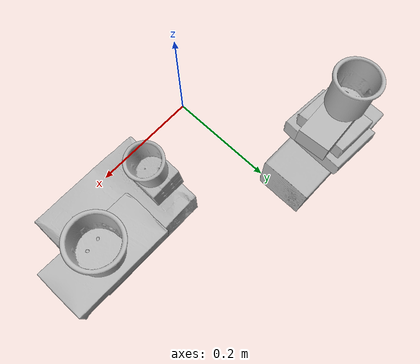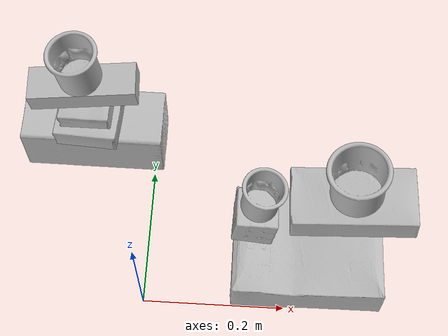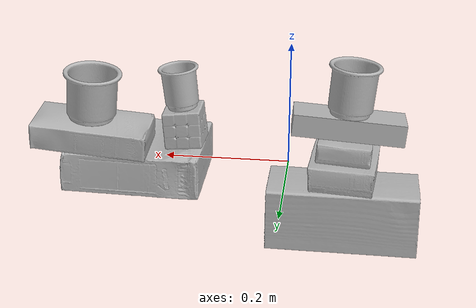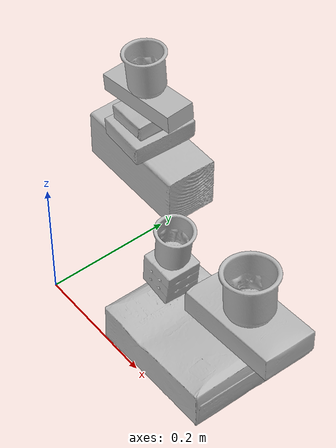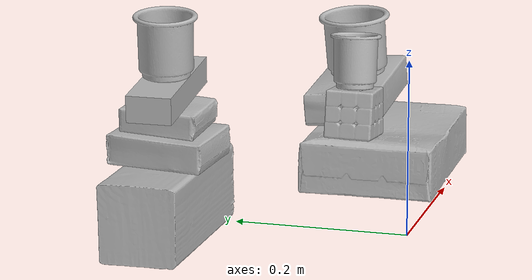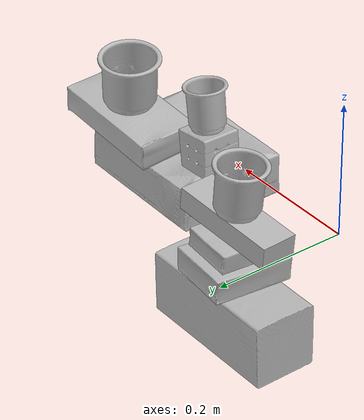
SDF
<?xml version="1.0" ?>
<sdf version="1.4">

  <world name="default">

    <light name="light1" type="point">

      <pose>0 0 1 0 0 0</pose>

      <diffuse>3 3 3 1</diffuse>

      <specular>3 3 3 1</specular>

    </light>

    <light name="light2" type="point">

      <pose>0 0.5 2 0 0 0</pose>

      <diffuse>1 1 1 1</diffuse>

      <specular>1 1 1 1</specular>

    </light>

    <light name="light3" type="point">

      <pose>0 0.5 2 0 0 0</pose>

      <diffuse>3 3 3 1</diffuse>

      <specular>3 3 3 1</specular>

    </light>

    <scene>

      <ambient>0.7 0.7 0.7</ambient>

    </scene>

    <model name="box21">

      <link name="link_box21">

        <collision name="default">

          <geometry>

            <mesh>

              <uri>model://cracker_box/collision_meshes/collision.obj</uri>

              <scale>1.0 1.0 1.0</scale>

            </mesh>

          </geometry>

          <surface>

            <friction>

              <ode>

                <mu>0.5</mu>

                <mu2>0.5</mu2>

              </ode>

            </friction>

          </surface>

        </collision>

        <visual name="default">

          <geometry>

            <mesh>

              <uri>model://cracker_box/visual_meshes/visual.dae</uri>

              <scale>1.0 1.0 1.0</scale>

            </mesh>

          </geometry>

        </visual>

        <inertial>

          <mass>1.1849639415740967</mass>

          <pose>0.0009464144241064787 0.0002543424488976598 -0.0017029534792527556 -0.0003162077682631379 -0.011106487737543453 0.002546794536785776</pose>

          <inertia>

            <ixx>0.0030140192</ixx>

            <iyy>0.004976738</iyy>

            <izz>0.007102261</izz>

            <ixy>0</ixy>

            <ixz>0</ixz>

            <iyz>0</iyz>

          </inertia>

        </inertial>

      </link>

      <pose>0.22974930703639984 0.08059576153755188 0.03648195415735245 -0.011793676869339152 -0.007366951367810859 8.803353629366258e-05</pose>

    </model>

    <model name="box22">

      <link name="link_box22">

        <collision name="default">

          <geometry>

            <mesh>

              <uri>model://rubiks_cube/collision_meshes/collision.obj</uri>

              <scale>1.0 1.0 1.0</scale>

            </mesh>

          </geometry>

          <surface>

            <friction>

              <ode>

                <mu>0.5</mu>

                <mu2>0.5</mu2>

              </ode>

            </friction>

          </surface>

        </collision>

        <visual name="default">

          <geometry>

            <mesh>

              <uri>model://rubiks_cube/visual_meshes/visual.dae</uri>

              <scale>1.0 1.0 1.0</scale>

            </mesh>

          </geometry>

        </visual>

        <inertial>

          <mass>0.10796652734279633</mass>

          <pose>2.6721041649580002e-05 5.2569666877388954e-05 -7.264316082000732e-06 -0.054672548620525036 -0.09813983330627576 -0.03445544186372042</pose>

          <inertia>

            <ixx>5.965876e-05</ixx>

            <iyy>5.9380527e-05</iyy>

            <izz>6.0153117e-05</izz>

            <ixy>0</ixy>

            <ixz>0</ixz>

            <iyz>0</iyz>

          </inertia>

        </inertial>

      </link>

      <pose>0.15246857702732086 0.1001039519906044 0.09809592366218567 -0.004426055133046898 0.09449736082781689 -0.0027575566238654706</pose>

    </model>

    <model name="box23">

      <link name="link_box23">

        <collision name="default">

          <geometry>

            <mesh>

              <uri>model://sugar_box/collision_meshes/collision.obj</uri>

              <scale>1.0 1.0 1.0</scale>

            </mesh>

          </geometry>

          <surface>

            <friction>

              <ode>

                <mu>0.5</mu>

                <mu2>0.5</mu2>

              </ode>

            </friction>

          </surface>

        </collision>

        <visual name="default">

          <geometry>

            <mesh>

              <uri>model://sugar_box/visual_meshes/visual.dae</uri>

              <scale>1.0 1.0 1.0</scale>

            </mesh>

          </geometry>

        </visual>

        <inertial>

          <mass>0.8519012928009033</mass>

          <pose>0.0010343727190047503 3.8491099985549226e-05 -0.0003636480832938105 -0.00040462606756407727 0.0010506635218583888 0.002615378789044619</pose>

          <inertia>

            <ixx>0.00070980185</ixx>

            <iyy>0.0022942254</iyy>

            <izz>0.0027464617</izz>

            <ixy>0</ixy>

            <ixz>0</ixz>

            <iyz>0</iyz>

          </inertia>

        </inertial>

      </link>

      <pose>0.2875300347805023 0.13125239312648773 0.09331170469522476 -0.05516012851799361 -0.07344305596210968 0.006625901636737767</pose>

    </model>

    <model name="cup1">

      <link name="link_cup1">

        <collision name="default">

          <geometry>

            <mesh>

              <uri>model://b_cups/collision_meshes/collision.obj</uri>

              <scale>1.0 1.0 1.0</scale>

            </mesh>

          </geometry>

          <surface>

            <friction>

              <ode>

                <mu>0.5</mu>

                <mu2>0.5</mu2>

              </ode>

            </friction>

          </surface>

        </collision>

        <visual name="default">

          <geometry>

            <mesh>

              <uri>model://b_cups/visual_meshes/visual.dae</uri>

              <scale>1.0 1.0 1.0</scale>

            </mesh>

          </geometry>

        </visual>

        <inertial>

          <mass>0.025879299268126488</mass>

          <pose>0.0005181999877095222 0.0018058597343042493 -0.0013381816679611802 0.11356295314662153 0.03872538879904025 -0.34569789869984097</pose>

          <inertia>

            <ixx>1.6939814e-05</ixx>

            <iyy>1.6618207e-05</iyy>

            <izz>1.4254532e-05</izz>

            <ixy>0</ixy>

            <ixz>0</ixz>

            <iyz>0</iyz>

          </inertia>

        </inertial>

      </link>

      <pose>0.15859484672546387 0.10036712139844894 0.1587926149368286 -0.011754060300965702 0.10627208417819671 -0.0015551445273964705</pose>

    </model>

    <model name="cup2">

      <link name="link_cup2">

        <collision name="default">

          <geometry>

            <mesh>

              <uri>model://g_cups/collision_meshes/collision.obj</uri>

              <scale>1.0 1.0 1.0</scale>

            </mesh>

          </geometry>

          <surface>

            <friction>

              <ode>

                <mu>0.5</mu>

                <mu2>0.5</mu2>

              </ode>

            </friction>

          </surface>

        </collision>

        <visual name="default">

          <geometry>

            <mesh>

              <uri>model://g_cups/visual_meshes/visual.dae</uri>

              <scale>1.0 1.0 1.0</scale>

            </mesh>

          </geometry>

        </visual>

        <inertial>

          <mass>0.06683293730020523</mass>

          <pose>-0.0007946278783492744 -4.206685844110325e-05 -0.002132937777787447 -0.21382591566164685 -0.31410327542238353 0.3112138520870617</pose>

          <inertia>

            <ixx>7.8009005e-05</ixx>

            <iyy>7.7743636e-05</iyy>

            <izz>8.080389e-05</izz>

            <ixy>0</ixy>

            <ixz>0</ixz>

            <iyz>0</iyz>

          </inertia>

        </inertial>

      </link>

      <pose>0.28657734394073486 0.13233934342861176 0.15249058604240417 -0.04886276146210399 -0.0900669986351076 0.017453843553095406</pose>

    </model>

    <model name="box11">

      <link name="link_box11">

        <collision name="default">

          <geometry>

            <mesh>

              <uri>model://wood_block/collision_meshes/collision.obj</uri>

              <scale>1.0 1.0 1.0</scale>

            </mesh>

          </geometry>

          <surface>

            <friction>

              <ode>

                <mu>0.5</mu>

                <mu2>0.5</mu2>

              </ode>

            </friction>

          </surface>

        </collision>

        <visual name="default">

          <geometry>

            <mesh>

              <uri>model://wood_block/visual_meshes/visual.dae</uri>

              <scale>1.0 1.0 1.0</scale>

            </mesh>

          </geometry>

        </visual>

        <inertial>

          <mass>0.9227498173713684</mass>

          <pose>-5.813315056002466e-06 -0.0005708094104193151 0.0002640858292579651 -0.05221074847543751 -0.005192695234575722 -0.00686137748598008</pose>

          <inertia>

            <ixx>0.001234779</ixx>

            <iyy>0.0039006667</iyy>

            <izz>0.0038860766</izz>

            <ixy>0</ixy>

            <ixz>0</ixz>

            <iyz>0</iyz>

          </inertia>

        </inertial>

      </link>

      <pose>-0.0899670273065567 0.2510026693344116 0.0452582873404026 -0.005202545064503796 0.005723084868609238 -0.002004365427280337</pose>

    </model>

    <model name="box12">

      <link name="link_box12">

        <collision name="default">

          <geometry>

            <mesh>

              <uri>model://pudding_box/collision_meshes/collision.obj</uri>

              <scale>1.0 1.0 1.0</scale>

            </mesh>

          </geometry>

          <surface>

            <friction>

              <ode>

                <mu>0.5</mu>

                <mu2>0.5</mu2>

              </ode>

            </friction>

          </surface>

        </collision>

        <visual name="default">

          <geometry>

            <mesh>

              <uri>model://pudding_box/visual_meshes/visual.dae</uri>

              <scale>1.0 1.0 1.0</scale>

            </mesh>

          </geometry>

        </visual>

        <inertial>

          <mass>0.23326139152050018</mass>

          <pose>0.0004894821904599667 0.0008067885646596551 -0.0005188827635720372 0.0052131032034861725 -0.006603797335681708 0.02007982515858456</pose>

          <inertia>

            <ixx>0.00026369</ixx>

            <iyy>0.00017741251</iyy>

            <izz>0.00038940719</izz>

            <ixy>0</ixy>

            <ixz>0</ixz>

            <iyz>0</iyz>

          </inertia>

        </inertial>

      </link>

      <pose>-0.09023495763540268 0.24873504042625427 0.11059302091598511 0.016979928359110722 -0.011569661769597133 -0.07311891593662306</pose>

    </model>

    <model name="box13">

      <link name="link_box13">

        <collision name="default">

          <geometry>

            <mesh>

              <uri>model://gelatin_box/collision_meshes/collision.obj</uri>

              <scale>1.0 1.0 1.0</scale>

            </mesh>

          </geometry>

          <surface>

            <friction>

              <ode>

                <mu>0.5</mu>

                <mu2>0.5</mu2>

              </ode>

            </friction>

          </surface>

        </collision>

        <visual name="default">

          <geometry>

            <mesh>

              <uri>model://gelatin_box/visual_meshes/visual.dae</uri>

              <scale>1.0 1.0 1.0</scale>

            </mesh>

          </geometry>

        </visual>

        <inertial>

          <mass>0.0997389405965805</mass>

          <pose>0.0004319618456065655 0.00011156871187267825 -0.0003640321083366871 -0.001050372080915675 -0.004755817759010177 0.0164405576084854</pose>

          <inertia>

            <ixx>7.040755e-05</ixx>

            <iyy>5.0291743e-05</iyy>

            <izz>0.000107175976</izz>

            <ixy>0</ixy>

            <ixz>0</ixz>

            <iyz>0</iyz>

          </inertia>

        </inertial>

      </link>

      <pose>-0.0908835232257843 0.24852725863456726 0.14418666064739227 0.03865552512019492 -0.05728787709167429 -0.05598455225332118</pose>

    </model>

    <model name="box14">

      <link name="link_box14">

        <collision name="default">

          <geometry>

            <mesh>

              <uri>model://jenga/collision_meshes/collision.obj</uri>

              <scale>1.0 1.0 1.0</scale>

            </mesh>

          </geometry>

          <surface>

            <friction>

              <ode>

                <mu>0.5</mu>

                <mu2>0.5</mu2>

              </ode>

            </friction>

          </surface>

        </collision>

        <visual name="default">

          <geometry>

            <mesh>

              <uri>model://jenga/visual_meshes/visual.dae</uri>

              <scale>1.0 1.0 1.0</scale>

            </mesh>

          </geometry>

        </visual>

        <inertial>

          <mass>0.23366476595401764</mass>

          <pose>-2.502855807051674e-07 -0.0001025000965455547 -4.092339804628864e-05 0.0 -7.34215461761844e-07 0.0</pose>

          <inertia>

            <ixx>6.466071e-05</ixx>

            <iyy>0.0004381392</iyy>

            <izz>0.00046775083</izz>

            <ixy>0</ixy>

            <ixz>0</ixz>

            <iyz>0</iyz>

          </inertia>

        </inertial>

      </link>

      <pose>-0.09338942170143127 0.24848893284797668 0.17365534603595734 0.013494211003989617 -0.08530498152588639 0.05740470706450464</pose>

    </model>

    <model name="cup15">

      <link name="link_cup15">

        <collision name="default">

          <geometry>

            <mesh>

              <uri>model://d_cups/collision_meshes/collision.obj</uri>

              <scale>1.0 1.0 1.0</scale>

            </mesh>

          </geometry>

          <surface>

            <friction>

              <ode>

                <mu>0.5</mu>

                <mu2>0.5</mu2>

              </ode>

            </friction>

          </surface>

        </collision>

        <visual name="default">

          <geometry>

            <mesh>

              <uri>model://d_cups/visual_meshes/visual.dae</uri>

              <scale>1.0 1.0 1.0</scale>

            </mesh>

          </geometry>

        </visual>

        <inertial>

          <mass>0.05354860797524452</mass>

          <pose>0.000806806143373251 0.001911740517243743 -0.002266649389639497 0.240133395025133 -0.24708811164710584 0.5942101592185234</pose>

          <inertia>

            <ixx>4.4832785e-05</ixx>

            <iyy>4.470303e-05</iyy>

            <izz>4.0581297e-05</izz>

            <ixy>0</ixy>

            <ixz>0</ixz>

            <iyz>0</iyz>

          </inertia>

        </inertial>

      </link>

      <pose>-0.09680052101612091 0.24804344773292542 0.22319500148296356 0.017981137669509113 -0.08446573995356906 0.004752629490268895</pose>

    </model>

  </world>

</sdf>
